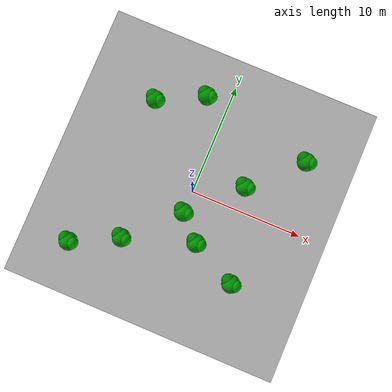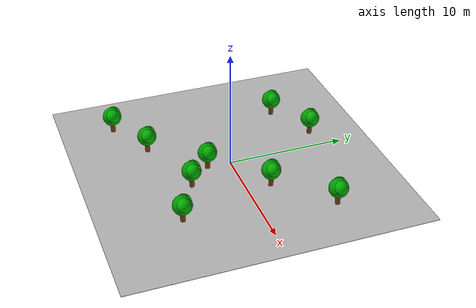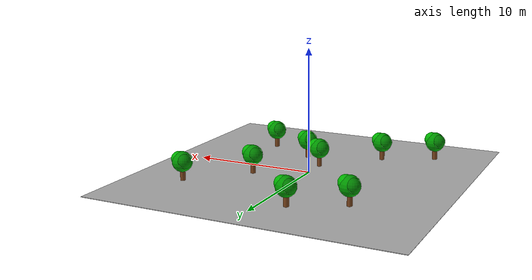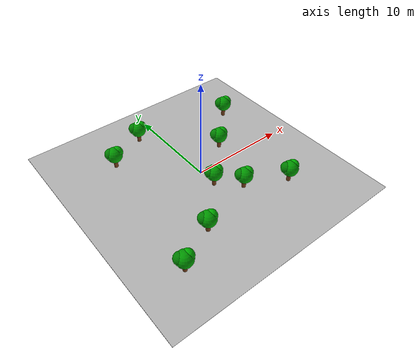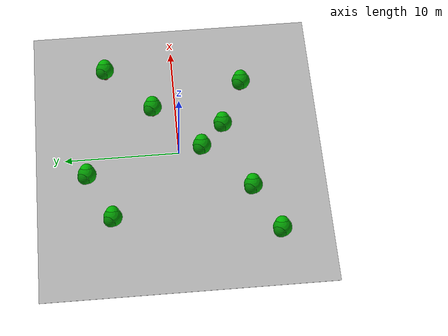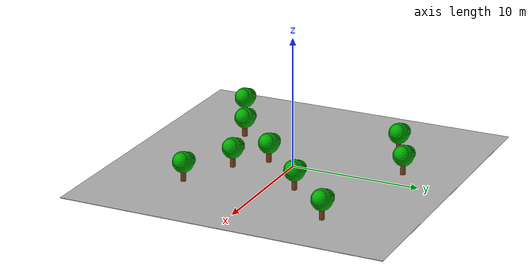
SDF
<sdf version="1.7">
  <world name="default">

    <!-- Physics -->
    <physics name="1ms" type="ignored">
      <max_step_size>0.001</max_step_size>
      <real_time_factor>1.0</real_time_factor>
    </physics>

    <!-- Sun -->
    <include>
      <uri>https://fuel.gazebosim.org/1.0/OpenRobotics/models/Sun</uri>
    </include>

    <!-- GRID FLOOR -->
    <model name="grid_floor">
      <static>true</static>
      <pose>0 0 0 0 0 0</pose>

      <link name="link">

        <visual name="base">
          <geometry>
            <plane>
              <size>25 25</size>
            </plane>
          </geometry>
        </visual>

        <visual name="grid_lines">
          <geometry>
            <plane>
              <size>25 25</size>
            </plane>
          </geometry>
          <material>
            <script>
              <uri>file://media/materials/scripts/gazebo.material</uri>
              <name>Gazebo/Grid</name>
            </script>
          </material>
        </visual>

        <collision name="collision">
          <geometry>
            <plane>
              <size>25 25</size>
            </plane>
          </geometry>
        </collision>

      </link>
    </model>

    <!-- ================= TREES ================= -->
    <!-- Using LOCAL model://tree_model -->

    <!-- SPREAD TREES -->

<include>
  <uri>model://tree_model</uri>
  <name>tree_1</name>
  <pose>-8 -8 0 0 0 0</pose>
</include>

<include>
  <uri>model://tree_model</uri>
  <name>tree_2</name>
  <pose>-4 -6 0 0 0 0</pose>
</include>

<include>
  <uri>model://tree_model</uri>
  <name>tree_3</name>
  <pose>0 -2 0 0 0 0</pose>
</include>

<include>
  <uri>model://tree_model</uri>
  <name>tree_4</name>
  <pose>4 2 0 0 0 0</pose>
</include>

<include>
  <uri>model://tree_model</uri>
  <name>tree_5</name>
  <pose>8 6 0 0 0 0</pose>
</include>

<include>
  <uri>model://tree_model</uri>
  <name>tree_6</name>
  <pose>-6 6 0 0 0 0</pose>
</include>

<include>
  <uri>model://tree_model</uri>
  <name>tree_7</name>
  <pose>6 -6 0 0 0 0</pose>
</include>

<include>
  <uri>model://tree_model</uri>
  <name>tree_8</name>
  <pose>-2 8 0 0 0 0</pose>
</include>

<include>
  <uri>model://tree_model</uri>
  <name>tree_9</name>
  <pose>2 -4 0 0 0 0</pose>
</include>

  </world>
</sdf>

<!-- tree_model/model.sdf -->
<sdf version="1.7">
  <model name="tree_model">
    <static>true</static>

    <link name="link">

      <!-- TRUNK -->
      <visual name="trunk">
        <geometry>
          <cylinder>
            <radius>0.2</radius>
            <length>2.5</length>
          </cylinder>
        </geometry>
        <material>
          <ambient>0.45 0.25 0.1 1</ambient>
          <diffuse>0.45 0.25 0.1 1</diffuse>
        </material>
      </visual>

      <collision name="trunk_collision">
        <geometry>
          <cylinder>
            <radius>0.25</radius>
            <length>2.5</length>
          </cylinder>
        </geometry>
      </collision>

      <!-- LEAVES (MULTI LAYERS FOR REAL LOOK) -->
      <visual name="leaves1">
        <pose>0 0 1.5 0 0 0</pose>
        <geometry>
          <sphere>
            <radius>0.8</radius>
          </sphere>
        </geometry>
        <material>
          <ambient>0.0 0.6 0.0 1</ambient>
          <diffuse>0.0 0.6 0.0 1</diffuse>
        </material>
      </visual>

      <visual name="leaves2">
        <pose>0.3 0 1.7 0 0 0</pose>
        <geometry>
          <sphere>
            <radius>0.6</radius>
          </sphere>
        </geometry>
        <material>
          <ambient>0.0 0.7 0.0 1</ambient>
          <diffuse>0.0 0.7 0.0 1</diffuse>
        </material>
      </visual>

      <visual name="leaves3">
        <pose>-0.3 0.2 1.6 0 0 0</pose>
        <geometry>
          <sphere>
            <radius>0.6</radius>
          </sphere>
        </geometry>
        <material>
          <ambient>0.0 0.5 0.0 1</ambient>
          <diffuse>0.0 0.5 0.0 1</diffuse>
        </material>
      </visual>

    </link>
  </model>
</sdf>
